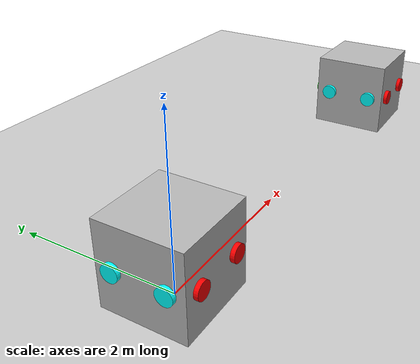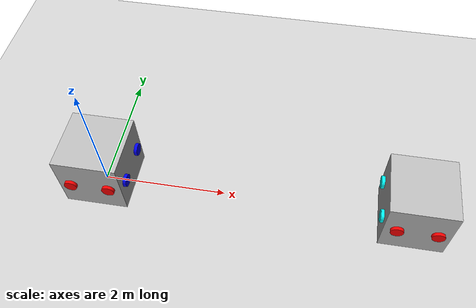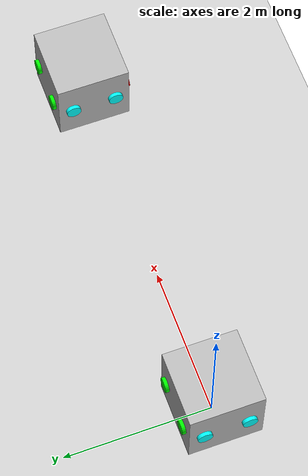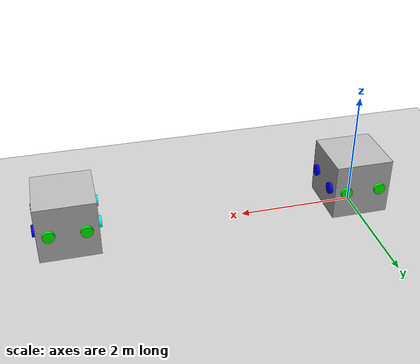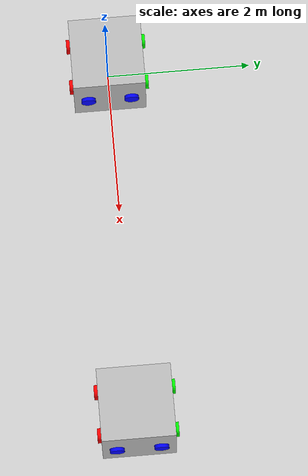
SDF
<?xml version="1.0" ?>
<sdf version="1.6">
  <world name="thruster_testbed">
    <gravity>0 0 -9.8066</gravity>
    <physics name="1ms" type="ignored">
      <max_step_size>0.001</max_step_size>
      <real_time_factor>1.0</real_time_factor>
    </physics>
    <plugin
      filename="gz-sim-physics-system"
      name="gz::sim::systems::Physics">
    </plugin>
    <plugin
      filename="gz-sim-scene-broadcaster-system"
      name="gz::sim::systems::SceneBroadcaster">
    </plugin>
    <plugin
      filename="gz-sim-user-commands-system"
      name="gz::sim::systems::UserCommands">
    </plugin>
    <plugin
      filename="gz-sim-sensors-system"
      name="gz::sim::systems::Sensors">
      <render_engine>ogre2</render_engine>
    </plugin>
    <light type="directional" name="sun">
      <cast_shadows>true</cast_shadows>
      <pose>0 0 10 0 0 0</pose>
      <diffuse>0.8 0.8 0.8 1</diffuse>
      <specular>0.2 0.2 0.2 1</specular>
      <attenuation>
        <range>1000</range>
        <constant>0.9</constant>
        <linear>0.01</linear>
        <quadratic>0.001</quadratic>
      </attenuation>
      <direction>-0.5 0.1 -0.9</direction>
    </light>
    <model name="ground_plane">
      <static>true</static>
      <link name="link">
        <collision name="collision">
          <geometry>
            <plane>
              <normal>0 0 1</normal>
              <size>100 100</size>
            </plane>
          </geometry>
          <surface>
                <friction>
                    <ode>
                        <mu>0.0</mu>
                        <mu2>0.0</mu2>
                    </ode>
                </friction>
          </surface>
        </collision>
        <visual name="visual">
          <geometry>
            <plane>
              <normal>0 0 1</normal>
              <size>100 100</size>
            </plane>
          </geometry>
          <material>
            <ambient>0.8 0.8 0.8 1</ambient>
            <diffuse>0.8 0.8 0.8 1</diffuse>
            <specular>0.8 0.8 0.8 1</specular>
          </material>
        </visual>
      </link>
    </model>
    <include>
      <pose>0 0 0.5 0 0 0</pose>
      <uri>../models/base5</uri>
    </include>
        <include>
      <pose>5 0 0.5 0 0 0</pose>
      <uri>../models/base6</uri>
    </include>
  </world>
</sdf>

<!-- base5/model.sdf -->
<sdf version='1.9'>
<!-- This has eight thrusters and no arm-->
  <model name='free_flyer'>
    <link name='base_link'>
      <inertial>
        <pose>0 0 0 0 0 0</pose>
        <mass>5</mass>
        <inertia>
          <ixx>10</ixx>
          <ixy>0</ixy>
          <ixz>0</ixz>
          <iyy>10</iyy>
          <iyz>0</iyz>
          <izz>10</izz>
        </inertia>
      </inertial>
      <collision name='base_link_collision'>
        <pose>0 0 0 0 0 0</pose>
        <geometry>
          <box>
            <size>1 1 1</size>
          </box>
        </geometry>
        <surface>
          <contact>
            <ode>
              <kp>100000</kp>
              <kd>100000</kd>
            </ode>
          </contact>
          <friction>
            <ode>
              <mu>0</mu>
              <mu2>0</mu2>
              <fdir1>0 0 1</fdir1>
            </ode>
          </friction>
        </surface>
      </collision>
      <visual name='base_link_visual'>
        <pose>0 0 0 0 0 0</pose>
        <geometry>
            <box>
                <size>1 1 1</size>
            </box>
        </geometry>
      </visual>
    </link>

    <!-- 0 : Move Left -->
    <joint name='thruster_left0_joint' type='fixed'>
      <pose relative_to='base_link'>0.3 -0.5 0 -1.5708 0 0</pose>
      <parent>base_link</parent>
      <child>thruster_left0</child>
      <axis>
        <dynamics>
          <spring_reference>0</spring_reference>
          <spring_stiffness>0</spring_stiffness>
        </dynamics>
        <xyz>0 0 1</xyz>
        <limit>
          <lower>-1e+16</lower>
          <upper>1e+16</upper>
        </limit>
      </axis>
      <physics>
        <ode>
          <limit>
            <cfm>0</cfm>
            <erp>0.2</erp>
          </limit>
        </ode>
      </physics>
    </joint>
    <link name='thruster_left0'>
      <pose relative_to='thruster_left0_joint'>0 0 0 0 0 0</pose>
      <inertial>
        <pose>0 0 0 0 0 0</pose>
        <mass>0.001</mass>
        <inertia>
          <ixx>1e-05</ixx>
          <ixy>0</ixy>
          <ixz>0</ixz>
          <iyy>1e-05</iyy>
          <iyz>0</iyz>
          <izz>1e-05</izz>
        </inertia>
      </inertial>
      <visual name="thruster_left0_visual">
        <pose> 0 0 0 0 0 0 </pose>
        <geometry>
            <cylinder>
                <length>0.1</length>
                <radius>0.1</radius>
            </cylinder>
        </geometry>
        <material>
            <ambient>0.1 0.1 0.1 1</ambient>
            <diffuse>1 0 0 1</diffuse>
            <specular>0 0 0 0</specular>
            <emissive>0 0 0 1</emissive>
        </material>
      </visual>
    </link>
    <plugin filename="gz-sim-spacecraft-thruster-model-system" name="gz::sim::systems::SpacecraftThrusterModel">
      <link_name>thruster_left0</link_name>
      <actuator_number>0</actuator_number><!--counterclockwise-->
      <duty_cycle_frequency>100</duty_cycle_frequency>
      <max_thrust>1.4</max_thrust>
      <topic>base</topic>
      <sub_topic>command/duty_cycle</sub_topic>
    </plugin>
    <!-- 1 : Move Left -->
    <joint name='thruster_left1_joint' type='fixed'>
      <pose relative_to='base_link'>-0.3 -0.5 0 -1.5708 0 0</pose>
      <parent>base_link</parent>
      <child>thruster_left1</child>
      <axis>
        <dynamics>
          <spring_reference>0</spring_reference>
          <spring_stiffness>0</spring_stiffness>
        </dynamics>
        <xyz>0 0 1</xyz>
        <limit>
          <lower>-1e+16</lower>
          <upper>1e+16</upper>
        </limit>
      </axis>
      <physics>
        <ode>
          <limit>
            <cfm>0</cfm>
            <erp>0.2</erp>
          </limit>
        </ode>
      </physics>
    </joint>
    <link name='thruster_left1'>
      <pose relative_to='thruster_left1_joint'>0 0 0 0 0 0</pose>
      <inertial>
        <pose>0 0 0 0 0 0</pose>
        <mass>0.001</mass>
        <inertia>
          <ixx>1e-05</ixx>
          <ixy>0</ixy>
          <ixz>0</ixz>
          <iyy>1e-05</iyy>
          <iyz>0</iyz>
          <izz>1e-05</izz>
        </inertia>
      </inertial>
      <visual name="thruster_left1_visual">
        <pose> 0 0 0 0 0 0 </pose>
        <geometry>
            <cylinder>
                <length>0.1</length>
                <radius>0.1</radius>
            </cylinder>
        </geometry>
        <material>
            <ambient>0.1 0.1 0.1 1</ambient>
            <diffuse>1 0 0 1</diffuse>
            <specular>0 0 0 0</specular>
            <emissive>0 0 0 1</emissive>
        </material>
      </visual>
    </link>
    <plugin filename="gz-sim-spacecraft-thruster-model-system" name="gz::sim::systems::SpacecraftThrusterModel">
      <link_name>thruster_left1</link_name>
      <actuator_number>1</actuator_number> <!--clockwise-->
      <duty_cycle_frequency>100</duty_cycle_frequency>
      <max_thrust>1.4</max_thrust>
      <topic>base</topic>
      <sub_topic>command/duty_cycle</sub_topic>
    </plugin>
<!--1: Move Right -->
    <joint name='thruster_right0_joint' type='fixed'>
      <pose relative_to='base_link'>0.3 0.5 0 1.5708 0 0</pose>
      <parent>base_link</parent>
      <child>thruster_right0</child>
      <axis>
        <dynamics>
          <spring_reference>0</spring_reference>
          <spring_stiffness>0</spring_stiffness>
        </dynamics>
        <xyz>0 0 1</xyz>
        <limit>
          <lower>-1e+16</lower>
          <upper>1e+16</upper>
        </limit>
      </axis>
      <physics>
        <ode>
          <limit>
            <cfm>0</cfm>
            <erp>0.2</erp>
          </limit>
        </ode>
      </physics>
    </joint>
    <link name='thruster_right0'>

      <pose relative_to='thruster_right0_joint'>0 0 0 0 0 0</pose>
      <inertial>
        <pose>0 0 0 0 0 0</pose>
        <mass>0.001</mass>
        <inertia>
          <ixx>1e-05</ixx>
          <ixy>0</ixy>
          <ixz>0</ixz>
          <iyy>1e-05</iyy>
          <iyz>0</iyz>
          <izz>1e-05</izz>
        </inertia>
      </inertial>
      <visual name="thruster_right0_visual">
        <pose> 0 0 0 0 0 0 </pose>
        <geometry>
            <cylinder>
                <length>0.1</length>
                <radius>0.1</radius>
            </cylinder>
        </geometry>
        <material>
            <ambient>0.1 0.1 0.1 1</ambient>
            <diffuse>0 1 0 1</diffuse>
            <specular>0 0 0 0</specular>
            <emissive>0 0 0 1</emissive>
        </material>
      </visual>
    </link>
    <plugin filename="gz-sim-spacecraft-thruster-model-system" name="gz::sim::systems::SpacecraftThrusterModel">
      <link_name>thruster_right0</link_name>
      <actuator_number>2</actuator_number> <!--clockwise-->
      <duty_cycle_frequency>100</duty_cycle_frequency>
      <topic>base</topic>
      <max_thrust>1.4</max_thrust>
      <sub_topic>command/duty_cycle</sub_topic>
    </plugin>

    <joint name='thruster_right1_joint' type='fixed'>
      <pose relative_to='base_link'>-0.3 0.5 0 1.5708 0 0</pose>
      <parent>base_link</parent>
      <child>thruster_right1</child>
      <axis>
        <dynamics>
          <spring_reference>0</spring_reference>
          <spring_stiffness>0</spring_stiffness>
        </dynamics>
        <xyz>0 0 1</xyz>
        <limit>
          <lower>-1e+16</lower>
          <upper>1e+16</upper>
        </limit>
      </axis>
      <physics>
        <ode>
          <limit>
            <cfm>0</cfm>
            <erp>0.2</erp>
          </limit>
        </ode>
      </physics>
    </joint>
    <link name='thruster_right1'>

      <pose relative_to='thruster_right1_joint'>0 0 0 0 0 0</pose>
      <inertial>
        <pose>0 0 0 0 0 0</pose>
        <mass>0.001</mass>
        <inertia>
          <ixx>1e-05</ixx>
          <ixy>0</ixy>
          <ixz>0</ixz>
          <iyy>1e-05</iyy>
          <iyz>0</iyz>
          <izz>1e-05</izz>
        </inertia>
      </inertial>
      <visual name="thruster_right1_visual">
        <pose> 0 0 0 0 0 0 </pose>
        <geometry>
            <cylinder>
                <length>0.1</length>
                <radius>0.1</radius>
            </cylinder>
        </geometry>
        <material>
            <ambient>0.1 0.1 0.1 1</ambient>
            <diffuse>0 1 0 1</diffuse>
            <specular>0 0 0 0</specular>
            <emissive>0 0 0 1</emissive>
        </material>
      </visual>
    </link>
    <plugin filename="gz-sim-spacecraft-thruster-model-system" name="gz::sim::systems::SpacecraftThrusterModel">
      <link_name>thruster_right1</link_name>
      <actuator_number>3</actuator_number> <!--counterclockwise-->
      <duty_cycle_frequency>100</duty_cycle_frequency>
      <max_thrust>1.4</max_thrust>
      <topic>base</topic>
      <sub_topic>command/duty_cycle</sub_topic>
    </plugin>

     <!--2: Move Forward -->
    <joint name='thruster_fwd0_joint' type='fixed'>
      <pose relative_to='base_link'>0.5 0.3 0 0 -1.5708 0</pose>
      <parent>base_link</parent>
      <child>thruster_fwd0</child>
      <axis>
        <dynamics>
          <spring_reference>0</spring_reference>
          <spring_stiffness>0</spring_stiffness>
        </dynamics>
        <xyz>0 0 1</xyz>
        <limit>
          <lower>-1e+16</lower>
          <upper>1e+16</upper>
        </limit>
      </axis>
      <physics>
        <ode>
          <limit>
            <cfm>0</cfm>
            <erp>0.2</erp>
          </limit>
        </ode>
      </physics>
    </joint>
    <link name='thruster_fwd0'>

      <pose relative_to='thruster_fwd0_joint'>0 0 0 0 0 0</pose>
      <inertial>
        <pose>0 0 0 0 0 0</pose>
        <mass>0.001</mass>
        <inertia>
          <ixx>1e-05</ixx>
          <ixy>0</ixy>
          <ixz>0</ixz>
          <iyy>1e-05</iyy>
          <iyz>0</iyz>
          <izz>1e-05</izz>
        </inertia>
      </inertial>
      <visual name="thruster_fwd0_visual">
        <pose> 0 0 0 0 0 0 </pose>
        <geometry>
            <cylinder>
                <length>0.1</length>
                <radius>0.1</radius>
            </cylinder>
        </geometry>
        <material>
            <ambient>0.1 0.1 0.1 1</ambient>
            <diffuse>0 0 1 1</diffuse>
            <specular>0 0 0 0</specular>
            <emissive>0 0 0 1</emissive>
        </material>
      </visual>
    </link>
    <plugin filename="gz-sim-spacecraft-thruster-model-system" name="gz::sim::systems::SpacecraftThrusterModel">
      <link_name>thruster_fwd0</link_name>
      <actuator_number>4</actuator_number> <!--counterclockwise-->
      <duty_cycle_frequency>100</duty_cycle_frequency>
      <max_thrust>1.4</max_thrust>
      <topic>base</topic>
      <sub_topic>command/duty_cycle</sub_topic>
    </plugin>

    <joint name='thruster_fwd1_joint' type='fixed'>
      <pose relative_to='base_link'>0.5 -0.3 0 0 -1.5708 0</pose>
      <parent>base_link</parent>
      <child>thruster_fwd1</child>
      <axis>
        <dynamics>
          <spring_reference>0</spring_reference>
          <spring_stiffness>0</spring_stiffness>
        </dynamics>
        <xyz>0 0 1</xyz>
        <limit>
          <lower>-1e+16</lower>
          <upper>1e+16</upper>
        </limit>
      </axis>
      <physics>
        <ode>
          <limit>
            <cfm>0</cfm>
            <erp>0.2</erp>
          </limit>
        </ode>
      </physics>
    </joint>
    <link name='thruster_fwd1'>

      <pose relative_to='thruster_fwd1_joint'>0 0 0 0 0 0</pose>
      <inertial>
        <pose>0 0 0 0 0 0</pose>
        <mass>0.001</mass>
        <inertia>
          <ixx>1e-05</ixx>
          <ixy>0</ixy>
          <ixz>0</ixz>
          <iyy>1e-05</iyy>
          <iyz>0</iyz>
          <izz>1e-05</izz>
        </inertia>
      </inertial>
      <visual name="thruster_fwd1_visual">
        <pose> 0 0 0 0 0 0 </pose>
        <geometry>
            <cylinder>
                <length>0.1</length>
                <radius>0.1</radius>
            </cylinder>
        </geometry>
        <material>
            <ambient>0.1 0.1 0.1 1</ambient>
            <diffuse>0 0 1 1</diffuse>
            <specular>0 0 0 0</specular>
            <emissive>0 0 0 1</emissive>
        </material>
      </visual>
    </link>
    <plugin filename="gz-sim-spacecraft-thruster-model-system" name="gz::sim::systems::SpacecraftThrusterModel">
      <link_name>thruster_fwd1</link_name>
      <actuator_number>5</actuator_number><!--clockwise-->
      <duty_cycle_frequency>100</duty_cycle_frequency>
      <max_thrust>1.4</max_thrust>
      <topic>base</topic>
      <sub_topic>command/duty_cycle</sub_topic>
    </plugin>
    <!--3. Move Backward -->
<joint name='thruster_back0_joint' type='fixed'>
      <pose relative_to='base_link'>-0.5 0.3 0 0 1.5708 0</pose>
      <parent>base_link</parent>
      <child>thruster_back0</child>
      <axis>
        <dynamics>
          <spring_reference>0</spring_reference>
          <spring_stiffness>0</spring_stiffness>
        </dynamics>
        <xyz>0 0 1</xyz>
        <limit>
          <lower>-1e+16</lower>
          <upper>1e+16</upper>
        </limit>
      </axis>
      <physics>
        <ode>
          <limit>
            <cfm>0</cfm>
            <erp>0.2</erp>
          </limit>
        </ode>
      </physics>
    </joint>
    <link name='thruster_back0'>

      <pose relative_to='thruster_back0_joint'>0 0 0 0 0 0</pose>
      <inertial>
        <pose>0 0 0 0 0 0</pose>
        <mass>0.001</mass>
        <inertia>
          <ixx>1e-05</ixx>
          <ixy>0</ixy>
          <ixz>0</ixz>
          <iyy>1e-05</iyy>
          <iyz>0</iyz>
          <izz>1e-05</izz>
        </inertia>
      </inertial>
      <visual name="thruster_back0_visual">
        <pose> 0 0 0 0 0 0 </pose>
        <geometry>
            <cylinder>
                <length>0.1</length>
                <radius>0.1</radius>
            </cylinder>
        </geometry>
        <material>
            <ambient>0.1 0.1 0.1 1</ambient>
            <diffuse>0 1 1 1</diffuse>
            <specular>0 0 0 0</specular>
            <emissive>0 0 0 1</emissive>
        </material>
      </visual>
    </link>
    <plugin filename="gz-sim-spacecraft-thruster-model-system" name="gz::sim::systems::SpacecraftThrusterModel">
      <link_name>thruster_back0</link_name>
      <actuator_number>6</actuator_number><!--clockwise-->
      <duty_cycle_frequency>100</duty_cycle_frequency>
      <max_thrust>1.4</max_thrust>
      <topic>base</topic>
      <sub_topic>command/duty_cycle</sub_topic>
    </plugin>
   <joint name='thruster_back1_joint' type='fixed'>
      <pose relative_to='base_link'>-0.5 -0.3 0 0 1.5708 0</pose>
      <parent>base_link</parent>
      <child>thruster_back1</child>
      <axis>
        <dynamics>
          <spring_reference>0</spring_reference>
          <spring_stiffness>0</spring_stiffness>
        </dynamics>
        <xyz>0 0 1</xyz>
        <limit>
          <lower>-1e+16</lower>
          <upper>1e+16</upper>
        </limit>
      </axis>
      <physics>
        <ode>
          <limit>
            <cfm>0</cfm>
            <erp>0.2</erp>
          </limit>
        </ode>
      </physics>
    </joint>
    <link name='thruster_back1'>

      <pose relative_to='thruster_back1_joint'>0 0 0 0 0 0</pose>
      <inertial>
        <pose>0 0 0 0 0 0</pose>
        <mass>0.001</mass>
        <inertia>
          <ixx>1e-05</ixx>
          <ixy>0</ixy>
          <ixz>0</ixz>
          <iyy>1e-05</iyy>
          <iyz>0</iyz>
          <izz>1e-05</izz>
        </inertia>
      </inertial>
      <visual name="thruster_back1_visual">
        <pose> 0 0 0 0 0 0 </pose>
        <geometry>
            <cylinder>
                <length>0.1</length>
                <radius>0.1</radius>
            </cylinder>
        </geometry>
        <material>
            <ambient>0.1 0.1 0.1 1</ambient>
            <diffuse>0 1 1 1</diffuse>
            <specular>0 0 0 0</specular>
            <emissive>0 0 0 1</emissive>
        </material>
      </visual>
    </link>
    <plugin filename="gz-sim-spacecraft-thruster-model-system" name="gz::sim::systems::SpacecraftThrusterModel">
      <link_name>thruster_back1</link_name>
      <actuator_number>7</actuator_number><!--counterclockwise-->
      <duty_cycle_frequency>100</duty_cycle_frequency>
      <max_thrust>1.4</max_thrust>
      <topic>base</topic>
      <sub_topic>command/duty_cycle</sub_topic>
    </plugin>

    <plugin
      filename="gz-sim-odometry-publisher-system"
      name="gz::sim::systems::OdometryPublisher">
      <robot_base_frame>base_link</robot_base_frame>
      <dimensions>2</dimensions>
    </plugin>
</model>
</sdf>

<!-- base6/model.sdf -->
<sdf version='1.9'>
<!-- This has eight thrusters and no arm-->
  <model name='free_flyer2'>
    <link name='base_link'>
      <inertial>
        <pose>0 0 0 0 0 0</pose>
        <mass>5</mass>
        <inertia>
          <ixx>10</ixx>
          <ixy>0</ixy>
          <ixz>0</ixz>
          <iyy>10</iyy>
          <iyz>0</iyz>
          <izz>10</izz>
        </inertia>
      </inertial>
      <collision name='base_link_collision'>
        <pose>0 0 0 0 0 0</pose>
        <geometry>
          <box>
            <size>1 1 1</size>
          </box>
        </geometry>
        <surface>
          <contact>
            <ode>
              <kp>100000</kp>
              <kd>100000</kd>
            </ode>
          </contact>
          <friction>
            <ode>
              <mu>0</mu>
              <mu2>0</mu2>
              <fdir1>0 0 1</fdir1>
            </ode>
          </friction>
        </surface>
      </collision>
      <visual name='base_link_visual'>
        <pose>0 0 0 0 0 0</pose>
        <geometry>
            <box>
                <size>1 1 1</size>
            </box>
        </geometry>
      </visual>
    </link>

    <!-- 0 : Move Left -->
    <joint name='thruster_left0_joint' type='fixed'>
      <pose relative_to='base_link'>0.3 -0.5 0 -1.5708 0 0</pose>
      <parent>base_link</parent>
      <child>thruster_left0</child>
      <axis>
        <dynamics>
          <spring_reference>0</spring_reference>
          <spring_stiffness>0</spring_stiffness>
        </dynamics>
        <xyz>0 0 1</xyz>
        <limit>
          <lower>-1e+16</lower>
          <upper>1e+16</upper>
        </limit>
      </axis>
      <physics>
        <ode>
          <limit>
            <cfm>0</cfm>
            <erp>0.2</erp>
          </limit>
        </ode>
      </physics>
    </joint>
    <link name='thruster_left0'>
      <pose relative_to='thruster_left0_joint'>0 0 0 0 0 0</pose>
      <inertial>
        <pose>0 0 0 0 0 0</pose>
        <mass>0.001</mass>
        <inertia>
          <ixx>1e-05</ixx>
          <ixy>0</ixy>
          <ixz>0</ixz>
          <iyy>1e-05</iyy>
          <iyz>0</iyz>
          <izz>1e-05</izz>
        </inertia>
      </inertial>
      <visual name="thruster_left0_visual">
        <pose> 0 0 0 0 0 0 </pose>
        <geometry>
            <cylinder>
                <length>0.1</length>
                <radius>0.1</radius>
            </cylinder>
        </geometry>
        <material>
            <ambient>0.1 0.1 0.1 1</ambient>
            <diffuse>1 0 0 1</diffuse>
            <specular>0 0 0 0</specular>
            <emissive>0 0 0 1</emissive>
        </material>
      </visual>
    </link>
    <plugin filename="gz-sim-spacecraft-thruster-model-system" name="gz::sim::systems::SpacecraftThrusterModel">
      <link_name>thruster_left0</link_name>
      <actuator_number>0</actuator_number><!--counterclockwise-->
      <duty_cycle_frequency>100</duty_cycle_frequency>
      <max_thrust>1.4</max_thrust>
      <topic>base6</topic>
      <sub_topic>command/duty_cycle</sub_topic>
    </plugin>
    <!-- 1 : Move Left -->
    <joint name='thruster_left1_joint' type='fixed'>
      <pose relative_to='base_link'>-0.3 -0.5 0 -1.5708 0 0</pose>
      <parent>base_link</parent>
      <child>thruster_left1</child>
      <axis>
        <dynamics>
          <spring_reference>0</spring_reference>
          <spring_stiffness>0</spring_stiffness>
        </dynamics>
        <xyz>0 0 1</xyz>
        <limit>
          <lower>-1e+16</lower>
          <upper>1e+16</upper>
        </limit>
      </axis>
      <physics>
        <ode>
          <limit>
            <cfm>0</cfm>
            <erp>0.2</erp>
          </limit>
        </ode>
      </physics>
    </joint>
    <link name='thruster_left1'>
      <pose relative_to='thruster_left1_joint'>0 0 0 0 0 0</pose>
      <inertial>
        <pose>0 0 0 0 0 0</pose>
        <mass>0.001</mass>
        <inertia>
          <ixx>1e-05</ixx>
          <ixy>0</ixy>
          <ixz>0</ixz>
          <iyy>1e-05</iyy>
          <iyz>0</iyz>
          <izz>1e-05</izz>
        </inertia>
      </inertial>
      <visual name="thruster_left1_visual">
        <pose> 0 0 0 0 0 0 </pose>
        <geometry>
            <cylinder>
                <length>0.1</length>
                <radius>0.1</radius>
            </cylinder>
        </geometry>
        <material>
            <ambient>0.1 0.1 0.1 1</ambient>
            <diffuse>1 0 0 1</diffuse>
            <specular>0 0 0 0</specular>
            <emissive>0 0 0 1</emissive>
        </material>
      </visual>
    </link>
    <plugin filename="gz-sim-spacecraft-thruster-model-system" name="gz::sim::systems::SpacecraftThrusterModel">
      <link_name>thruster_left1</link_name>
      <actuator_number>1</actuator_number> <!--clockwise-->
      <duty_cycle_frequency>100</duty_cycle_frequency>
      <max_thrust>1.4</max_thrust>
      <topic>base6</topic>
      <sub_topic>command/duty_cycle</sub_topic>
    </plugin>
<!--1: Move Right -->
    <joint name='thruster_right0_joint' type='fixed'>
      <pose relative_to='base_link'>0.3 0.5 0 1.5708 0 0</pose>
      <parent>base_link</parent>
      <child>thruster_right0</child>
      <axis>
        <dynamics>
          <spring_reference>0</spring_reference>
          <spring_stiffness>0</spring_stiffness>
        </dynamics>
        <xyz>0 0 1</xyz>
        <limit>
          <lower>-1e+16</lower>
          <upper>1e+16</upper>
        </limit>
      </axis>
      <physics>
        <ode>
          <limit>
            <cfm>0</cfm>
            <erp>0.2</erp>
          </limit>
        </ode>
      </physics>
    </joint>
    <link name='thruster_right0'>

      <pose relative_to='thruster_right0_joint'>0 0 0 0 0 0</pose>
      <inertial>
        <pose>0 0 0 0 0 0</pose>
        <mass>0.001</mass>
        <inertia>
          <ixx>1e-05</ixx>
          <ixy>0</ixy>
          <ixz>0</ixz>
          <iyy>1e-05</iyy>
          <iyz>0</iyz>
          <izz>1e-05</izz>
        </inertia>
      </inertial>
      <visual name="thruster_right0_visual">
        <pose> 0 0 0 0 0 0 </pose>
        <geometry>
            <cylinder>
                <length>0.1</length>
                <radius>0.1</radius>
            </cylinder>
        </geometry>
        <material>
            <ambient>0.1 0.1 0.1 1</ambient>
            <diffuse>0 1 0 1</diffuse>
            <specular>0 0 0 0</specular>
            <emissive>0 0 0 1</emissive>
        </material>
      </visual>
    </link>
    <plugin filename="gz-sim-spacecraft-thruster-model-system" name="gz::sim::systems::SpacecraftThrusterModel">
      <link_name>thruster_right0</link_name>
      <actuator_number>2</actuator_number> <!--clockwise-->
      <duty_cycle_frequency>100</duty_cycle_frequency>
      <topic>base6</topic>
      <max_thrust>1.4</max_thrust>
      <sub_topic>command/duty_cycle</sub_topic>
    </plugin>

    <joint name='thruster_right1_joint' type='fixed'>
      <pose relative_to='base_link'>-0.3 0.5 0 1.5708 0 0</pose>
      <parent>base_link</parent>
      <child>thruster_right1</child>
      <axis>
        <dynamics>
          <spring_reference>0</spring_reference>
          <spring_stiffness>0</spring_stiffness>
        </dynamics>
        <xyz>0 0 1</xyz>
        <limit>
          <lower>-1e+16</lower>
          <upper>1e+16</upper>
        </limit>
      </axis>
      <physics>
        <ode>
          <limit>
            <cfm>0</cfm>
            <erp>0.2</erp>
          </limit>
        </ode>
      </physics>
    </joint>
    <link name='thruster_right1'>

      <pose relative_to='thruster_right1_joint'>0 0 0 0 0 0</pose>
      <inertial>
        <pose>0 0 0 0 0 0</pose>
        <mass>0.001</mass>
        <inertia>
          <ixx>1e-05</ixx>
          <ixy>0</ixy>
          <ixz>0</ixz>
          <iyy>1e-05</iyy>
          <iyz>0</iyz>
          <izz>1e-05</izz>
        </inertia>
      </inertial>
      <visual name="thruster_right1_visual">
        <pose> 0 0 0 0 0 0 </pose>
        <geometry>
            <cylinder>
                <length>0.1</length>
                <radius>0.1</radius>
            </cylinder>
        </geometry>
        <material>
            <ambient>0.1 0.1 0.1 1</ambient>
            <diffuse>0 1 0 1</diffuse>
            <specular>0 0 0 0</specular>
            <emissive>0 0 0 1</emissive>
        </material>
      </visual>
    </link>
    <plugin filename="gz-sim-spacecraft-thruster-model-system" name="gz::sim::systems::SpacecraftThrusterModel">
      <link_name>thruster_right1</link_name>
      <actuator_number>3</actuator_number> <!--counterclockwise-->
      <duty_cycle_frequency>100</duty_cycle_frequency>
      <max_thrust>1.4</max_thrust>
      <topic>base6</topic>
      <sub_topic>command/duty_cycle</sub_topic>
    </plugin>

     <!--2: Move Forward -->
    <joint name='thruster_fwd0_joint' type='fixed'>
      <pose relative_to='base_link'>0.5 0.3 0 0 -1.5708 0</pose>
      <parent>base_link</parent>
      <child>thruster_fwd0</child>
      <axis>
        <dynamics>
          <spring_reference>0</spring_reference>
          <spring_stiffness>0</spring_stiffness>
        </dynamics>
        <xyz>0 0 1</xyz>
        <limit>
          <lower>-1e+16</lower>
          <upper>1e+16</upper>
        </limit>
      </axis>
      <physics>
        <ode>
          <limit>
            <cfm>0</cfm>
            <erp>0.2</erp>
          </limit>
        </ode>
      </physics>
    </joint>
    <link name='thruster_fwd0'>

      <pose relative_to='thruster_fwd0_joint'>0 0 0 0 0 0</pose>
      <inertial>
        <pose>0 0 0 0 0 0</pose>
        <mass>0.001</mass>
        <inertia>
          <ixx>1e-05</ixx>
          <ixy>0</ixy>
          <ixz>0</ixz>
          <iyy>1e-05</iyy>
          <iyz>0</iyz>
          <izz>1e-05</izz>
        </inertia>
      </inertial>
      <visual name="thruster_fwd0_visual">
        <pose> 0 0 0 0 0 0 </pose>
        <geometry>
            <cylinder>
                <length>0.1</length>
                <radius>0.1</radius>
            </cylinder>
        </geometry>
        <material>
            <ambient>0.1 0.1 0.1 1</ambient>
            <diffuse>0 0 1 1</diffuse>
            <specular>0 0 0 0</specular>
            <emissive>0 0 0 1</emissive>
        </material>
      </visual>
    </link>
    <plugin filename="gz-sim-spacecraft-thruster-model-system" name="gz::sim::systems::SpacecraftThrusterModel">
      <link_name>thruster_fwd0</link_name>
      <actuator_number>4</actuator_number> <!--counterclockwise-->
      <duty_cycle_frequency>100</duty_cycle_frequency>
      <max_thrust>1.4</max_thrust>
      <topic>base6</topic>
      <sub_topic>command/duty_cycle</sub_topic>
    </plugin>

    <joint name='thruster_fwd1_joint' type='fixed'>
      <pose relative_to='base_link'>0.5 -0.3 0 0 -1.5708 0</pose>
      <parent>base_link</parent>
      <child>thruster_fwd1</child>
      <axis>
        <dynamics>
          <spring_reference>0</spring_reference>
          <spring_stiffness>0</spring_stiffness>
        </dynamics>
        <xyz>0 0 1</xyz>
        <limit>
          <lower>-1e+16</lower>
          <upper>1e+16</upper>
        </limit>
      </axis>
      <physics>
        <ode>
          <limit>
            <cfm>0</cfm>
            <erp>0.2</erp>
          </limit>
        </ode>
      </physics>
    </joint>
    <link name='thruster_fwd1'>

      <pose relative_to='thruster_fwd1_joint'>0 0 0 0 0 0</pose>
      <inertial>
        <pose>0 0 0 0 0 0</pose>
        <mass>0.001</mass>
        <inertia>
          <ixx>1e-05</ixx>
          <ixy>0</ixy>
          <ixz>0</ixz>
          <iyy>1e-05</iyy>
          <iyz>0</iyz>
          <izz>1e-05</izz>
        </inertia>
      </inertial>
      <visual name="thruster_fwd1_visual">
        <pose> 0 0 0 0 0 0 </pose>
        <geometry>
            <cylinder>
                <length>0.1</length>
                <radius>0.1</radius>
            </cylinder>
        </geometry>
        <material>
            <ambient>0.1 0.1 0.1 1</ambient>
            <diffuse>0 0 1 1</diffuse>
            <specular>0 0 0 0</specular>
            <emissive>0 0 0 1</emissive>
        </material>
      </visual>
    </link>
    <plugin filename="gz-sim-spacecraft-thruster-model-system" name="gz::sim::systems::SpacecraftThrusterModel">
      <link_name>thruster_fwd1</link_name>
      <actuator_number>5</actuator_number><!--clockwise-->
      <duty_cycle_frequency>100</duty_cycle_frequency>
      <max_thrust>1.4</max_thrust>
      <topic>base6</topic>
      <sub_topic>command/duty_cycle</sub_topic>
    </plugin>
    <!--3. Move Backward -->
<joint name='thruster_back0_joint' type='fixed'>
      <pose relative_to='base_link'>-0.5 0.3 0 0 1.5708 0</pose>
      <parent>base_link</parent>
      <child>thruster_back0</child>
      <axis>
        <dynamics>
          <spring_reference>0</spring_reference>
          <spring_stiffness>0</spring_stiffness>
        </dynamics>
        <xyz>0 0 1</xyz>
        <limit>
          <lower>-1e+16</lower>
          <upper>1e+16</upper>
        </limit>
      </axis>
      <physics>
        <ode>
          <limit>
            <cfm>0</cfm>
            <erp>0.2</erp>
          </limit>
        </ode>
      </physics>
    </joint>
    <link name='thruster_back0'>

      <pose relative_to='thruster_back0_joint'>0 0 0 0 0 0</pose>
      <inertial>
        <pose>0 0 0 0 0 0</pose>
        <mass>0.001</mass>
        <inertia>
          <ixx>1e-05</ixx>
          <ixy>0</ixy>
          <ixz>0</ixz>
          <iyy>1e-05</iyy>
          <iyz>0</iyz>
          <izz>1e-05</izz>
        </inertia>
      </inertial>
      <visual name="thruster_back0_visual">
        <pose> 0 0 0 0 0 0 </pose>
        <geometry>
            <cylinder>
                <length>0.1</length>
                <radius>0.1</radius>
            </cylinder>
        </geometry>
        <material>
            <ambient>0.1 0.1 0.1 1</ambient>
            <diffuse>0 1 1 1</diffuse>
            <specular>0 0 0 0</specular>
            <emissive>0 0 0 1</emissive>
        </material>
      </visual>
    </link>
    <plugin filename="gz-sim-spacecraft-thruster-model-system" name="gz::sim::systems::SpacecraftThrusterModel">
      <link_name>thruster_back0</link_name>
      <actuator_number>6</actuator_number><!--clockwise-->
      <duty_cycle_frequency>100</duty_cycle_frequency>
      <max_thrust>1.4</max_thrust>
      <topic>base6</topic>
      <sub_topic>command/duty_cycle</sub_topic>
    </plugin>
   <joint name='thruster_back1_joint' type='fixed'>
      <pose relative_to='base_link'>-0.5 -0.3 0 0 1.5708 0</pose>
      <parent>base_link</parent>
      <child>thruster_back1</child>
      <axis>
        <dynamics>
          <spring_reference>0</spring_reference>
          <spring_stiffness>0</spring_stiffness>
        </dynamics>
        <xyz>0 0 1</xyz>
        <limit>
          <lower>-1e+16</lower>
          <upper>1e+16</upper>
        </limit>
      </axis>
      <physics>
        <ode>
          <limit>
            <cfm>0</cfm>
            <erp>0.2</erp>
          </limit>
        </ode>
      </physics>
    </joint>
    <link name='thruster_back1'>

      <pose relative_to='thruster_back1_joint'>0 0 0 0 0 0</pose>
      <inertial>
        <pose>0 0 0 0 0 0</pose>
        <mass>0.001</mass>
        <inertia>
          <ixx>1e-05</ixx>
          <ixy>0</ixy>
          <ixz>0</ixz>
          <iyy>1e-05</iyy>
          <iyz>0</iyz>
          <izz>1e-05</izz>
        </inertia>
      </inertial>
      <visual name="thruster_back1_visual">
        <pose> 0 0 0 0 0 0 </pose>
        <geometry>
            <cylinder>
                <length>0.1</length>
                <radius>0.1</radius>
            </cylinder>
        </geometry>
        <material>
            <ambient>0.1 0.1 0.1 1</ambient>
            <diffuse>0 1 1 1</diffuse>
            <specular>0 0 0 0</specular>
            <emissive>0 0 0 1</emissive>
        </material>
      </visual>
    </link>
    <plugin filename="gz-sim-spacecraft-thruster-model-system" name="gz::sim::systems::SpacecraftThrusterModel">
      <link_name>thruster_back1</link_name>
      <actuator_number>7</actuator_number><!--counterclockwise-->
      <duty_cycle_frequency>100</duty_cycle_frequency>
      <max_thrust>1.4</max_thrust>
      <topic>base6</topic>
      <sub_topic>command/duty_cycle</sub_topic>
    </plugin>

    <plugin
      filename="gz-sim-odometry-publisher-system"
      name="gz::sim::systems::OdometryPublisher">
      <robot_base_frame>base_link</robot_base_frame>
      <dimensions>2</dimensions>
    </plugin>
</model>
</sdf>
